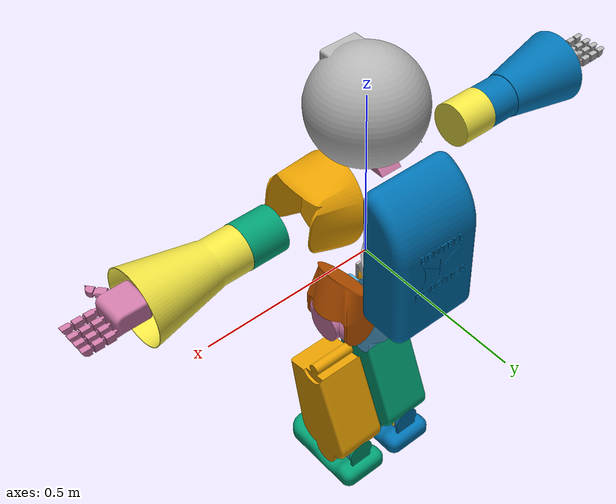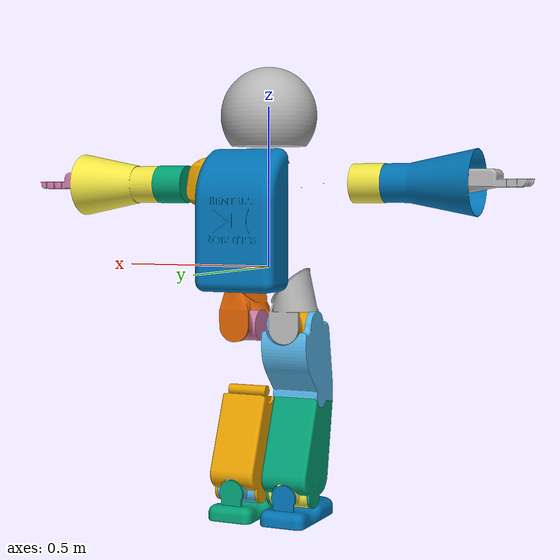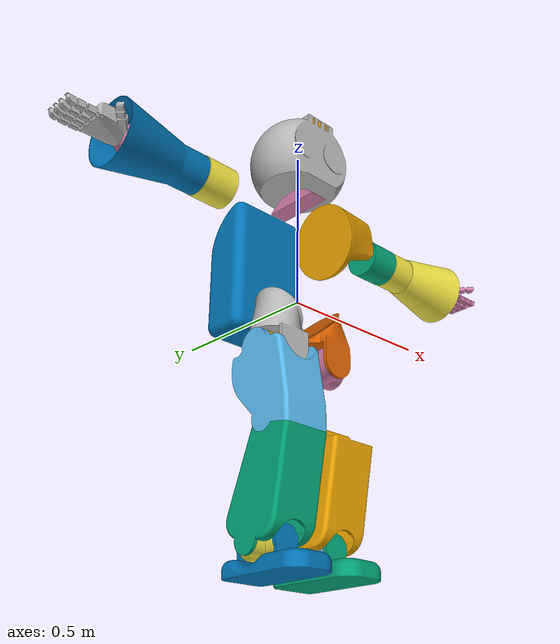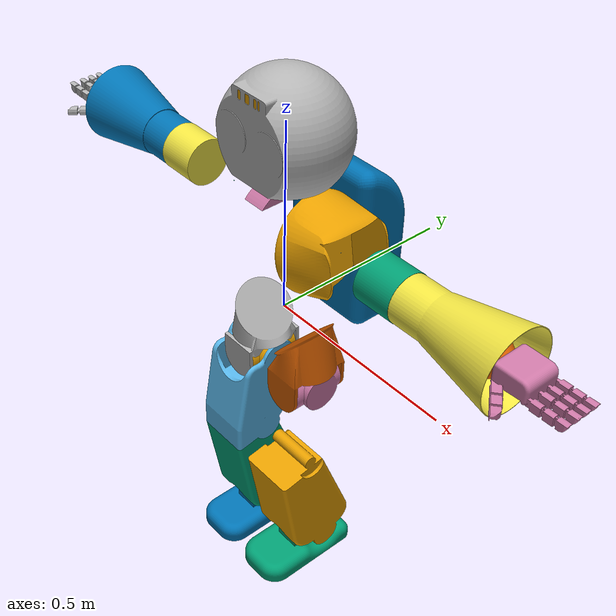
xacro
<?xml version="1.0"?>
<robot xmlns:xacro="http://www.ros.org/wiki/xacro" name="kora">
<!-- Built using Xacro Generator: https://github.com/Miimiikiu/kora_tools.git -->
<xacro:property name="Black" value="0.0 0.0 0.0 1.0"/>
<xacro:property name="torso_lower_visual_mesh" value="file:///home/sunset/sunset_ws/src/kora/src/kora_desc/visuals/OBJ/torso_lower.obj"/>
<xacro:property name="torso_lower_collision_mesh" value="file:///home/sunset/sunset_ws/src/kora/src/kora_desc/collisions/OBJ/torso_lower_collision.obj"/>
<xacro:property name="torso_mid_visual_mesh" value="file:///home/sunset/sunset_ws/src/kora/src/kora_desc/visuals/OBJ/torso_mid.obj"/>
<xacro:property name="torso_mid_collision_mesh" value="file:///home/sunset/sunset_ws/src/kora/src/kora_desc/collisions/OBJ/torso_mid_collision.obj"/>
<xacro:property name="torso_upper_visual_mesh" value="file:///home/sunset/sunset_ws/src/kora/src/kora_desc/visuals/OBJ/torso_upper.obj"/>
<xacro:property name="torso_upper_collision_mesh" value="file:///home/sunset/sunset_ws/src/kora/src/kora_desc/collisions/OBJ/torso_upper_collision.obj"/>
<xacro:property name="backpack_visual_mesh" value="file:///home/sunset/sunset_ws/src/kora/src/kora_desc/visuals/OBJ/backpack.obj"/>
<xacro:property name="backpack_collision_mesh" value="file:///home/sunset/sunset_ws/src/kora/src/kora_desc/collisions/OBJ/backpack_collision.obj"/>
<xacro:property name="neck_visual_mesh" value="file:///home/sunset/sunset_ws/src/kora/src/kora_desc/visuals/OBJ/neck.obj"/>
<xacro:property name="neck_collision_mesh" value="file:///home/sunset/sunset_ws/src/kora/src/kora_desc/collisions/OBJ/neck_collision.obj"/>
<xacro:property name="neck_connection_visual_mesh" value="file:///home/sunset/sunset_ws/src/kora/src/kora_desc/visuals/OBJ/neck_connection.obj"/>
<xacro:property name="neck_connection_collision_mesh" value="file:///home/sunset/sunset_ws/src/kora/src/kora_desc/collisions/OBJ/neck_connection_collision.obj"/>
<xacro:property name="head_visual_mesh" value="file:///home/sunset/sunset_ws/src/kora/src/kora_desc/visuals/OBJ/head.obj"/>
<xacro:property name="head_collision_mesh" value="file:///home/sunset/sunset_ws/src/kora/src/kora_desc/collisions/OBJ/head_collision.obj"/>
<xacro:property name="realsense_visual_mesh" value="file:///home/sunset/sunset_ws/src/kora/src/kora_desc/visuals/OBJ/realsense.obj"/>
<xacro:property name="realsense_collision_mesh" value="file:///home/sunset/sunset_ws/src/kora/src/kora_desc/collisions/OBJ/realsense_collision.obj"/>
<xacro:property name="shoulder_bracket_dexter_visual_mesh" value="file:///home/sunset/sunset_ws/src/kora/src/kora_desc/visuals/OBJ/shoulder_bracket_dexter.obj"/>
<xacro:property name="shoulder_bracket_dexter_collision_mesh" value="file:///home/sunset/sunset_ws/src/kora/src/kora_desc/collisions/OBJ/shoulder_bracket_dexter_collision.obj"/>
<xacro:property name="shoulder_link_dexter_visual_mesh" value="file:///home/sunset/sunset_ws/src/kora/src/kora_desc/visuals/OBJ/shoulder_link_dexter.obj"/>
<xacro:property name="shoulder_link_dexter_collision_mesh" value="file:///home/sunset/sunset_ws/src/kora/src/kora_desc/collisions/OBJ/shoulder_link_dexter_collision.obj"/>
<xacro:property name="arm_upper_dexter_visual_mesh" value="file:///home/sunset/sunset_ws/src/kora/src/kora_desc/visuals/OBJ/arm_upper_dexter.obj"/>
<xacro:property name="arm_upper_dexter_collision_mesh" value="file:///home/sunset/sunset_ws/src/kora/src/kora_desc/collisions/OBJ/arm_upper_dexter_collision.obj"/>
<xacro:property name="forearm_dexter_visual_mesh" value="file:///home/sunset/sunset_ws/src/kora/src/kora_desc/visuals/OBJ/forearm_dexter.obj"/>
<xacro:property name="forearm_dexter_collision_mesh" value="file:///home/sunset/sunset_ws/src/kora/src/kora_desc/collisions/OBJ/forearm_dexter_collision.obj"/>
<xacro:property name="wrist_rot_link_dexter_visual_mesh" value="file:///home/sunset/sunset_ws/src/kora/src/kora_desc/visuals/OBJ/wrist_rot_link_dexter.obj"/>
<xacro:property name="wrist_rot_link_dexter_collision_mesh" value="file:///home/sunset/sunset_ws/src/kora/src/kora_desc/collisions/OBJ/wrist_rot_link_dexter_collision.obj"/>
<xacro:property name="wrist_ball_dexter_visual_mesh" value="file:///home/sunset/sunset_ws/src/kora/src/kora_desc/visuals/OBJ/wrist_ball_dexter.obj"/>
<xacro:property name="wrist_ball_dexter_collision_mesh" value="file:///home/sunset/sunset_ws/src/kora/src/kora_desc/collisions/OBJ/wrist_ball_dexter_collision.obj"/>
<xacro:property name="hand_dexter_visual_mesh" value="file:///home/sunset/sunset_ws/src/kora/src/kora_desc/visuals/OBJ/hand_dexter.obj"/>
<xacro:property name="hand_dexter_collision_mesh" value="file:///home/sunset/sunset_ws/src/kora/src/kora_desc/collisions/OBJ/hand_dexter_collision.obj"/>
<xacro:property name="shoulder_bracket_sinister_visual_mesh" value="file:///home/sunset/sunset_ws/src/kora/src/kora_desc/visuals/OBJ/shoulder_bracket_sinister.obj"/>
<xacro:property name="shoulder_bracket_sinister_collision_mesh" value="file:///home/sunset/sunset_ws/src/kora/src/kora_desc/collisions/OBJ/shoulder_bracket_sinister_collision.obj"/>
<xacro:property name="shoulder_link_sinister_visual_mesh" value="file:///home/sunset/sunset_ws/src/kora/src/kora_desc/visuals/OBJ/shoulder_link_sinister.obj"/>
<xacro:property name="shoulder_link_sinister_collision_mesh" value="file:///home/sunset/sunset_ws/src/kora/src/kora_desc/collisions/OBJ/shoulder_link_sinister_collision.obj"/>
<xacro:property name="arm_upper_sinister_visual_mesh" value="file:///home/sunset/sunset_ws/src/kora/src/kora_desc/visuals/OBJ/arm_upper_sinister.obj"/>
<xacro:property name="arm_upper_sinister_collision_mesh" value="file:///home/sunset/sunset_ws/src/kora/src/kora_desc/collisions/OBJ/arm_upper_sinister_collision.obj"/>
<xacro:property name="forearm_sinister_visual_mesh" value="file:///home/sunset/sunset_ws/src/kora/src/kora_desc/visuals/OBJ/forearm_sinister.obj"/>
<xacro:property name="forearm_sinister_collision_mesh" value="file:///home/sunset/sunset_ws/src/kora/src/kora_desc/collisions/OBJ/forearm_sinister_collision.obj"/>
<xacro:property name="wrist_rot_link_sinister_visual_mesh" value="file:///home/sunset/sunset_ws/src/kora/src/kora_desc/visuals/OBJ/wrist_rot_link_sinister.obj"/>
<xacro:property name="wrist_rot_link_sinister_collision_mesh" value="file:///home/sunset/sunset_ws/src/kora/src/kora_desc/collisions/OBJ/wrist_rot_link_sinister_collision.obj"/>
<xacro:property name="wrist_ball_sinister_visual_mesh" value="file:///home/sunset/sunset_ws/src/kora/src/kora_desc/visuals/OBJ/wrist_ball_sinister.obj"/>
<xacro:property name="wrist_ball_sinister_collision_mesh" value="file:///home/sunset/sunset_ws/src/kora/src/kora_desc/collisions/OBJ/wrist_ball_sinister_collision.obj"/>
<xacro:property name="hand_sinister_visual_mesh" value="file:///home/sunset/sunset_ws/src/kora/src/kora_desc/visuals/OBJ/hand_sinister.obj"/>
<xacro:property name="hand_sinister_collision_mesh" value="file:///home/sunset/sunset_ws/src/kora/src/kora_desc/collisions/OBJ/hand_sinister_collision.obj"/>
<xacro:property name="hip_bracket_dexter_visual_mesh" value="file:///home/sunset/sunset_ws/src/kora/src/kora_desc/visuals/OBJ/hip_bracket_dexter.obj"/>
<xacro:property name="hip_bracket_dexter_collision_mesh" value="file:///home/sunset/sunset_ws/src/kora/src/kora_desc/collisions/OBJ/hip_bracket_dexter_collision.obj"/>
<xacro:property name="hip_motor_link_dexter_visual_mesh" value="file:///home/sunset/sunset_ws/src/kora/src/kora_desc/visuals/OBJ/hip_motor_link_dexter.obj"/>
<xacro:property name="hip_motor_link_dexter_collision_mesh" value="file:///home/sunset/sunset_ws/src/kora/src/kora_desc/collisions/OBJ/hip_motor_link_dexter_collision.obj"/>
<xacro:property name="thigh_dexter_visual_mesh" value="file:///home/sunset/sunset_ws/src/kora/src/kora_desc/visuals/OBJ/thigh_dexter.obj"/>
<xacro:property name="thigh_dexter_collision_mesh" value="file:///home/sunset/sunset_ws/src/kora/src/kora_desc/collisions/OBJ/thigh_dexter_collision.obj"/>
<xacro:property name="calf_dexter_visual_mesh" value="file:///home/sunset/sunset_ws/src/kora/src/kora_desc/visuals/OBJ/calf_dexter.obj"/>
<xacro:property name="calf_dexter_collision_mesh" value="file:///home/sunset/sunset_ws/src/kora/src/kora_desc/collisions/OBJ/calf_dexter_collision.obj"/>
<xacro:property name="ankle_link_dexter_visual_mesh" value="file:///home/sunset/sunset_ws/src/kora/src/kora_desc/visuals/OBJ/ankle_link_dexter.obj"/>
<xacro:property name="ankle_link_dexter_collision_mesh" value="file:///home/sunset/sunset_ws/src/kora/src/kora_desc/collisions/OBJ/ankle_link_dexter_collision.obj"/>
<xacro:property name="foot_dexter_visual_mesh" value="file:///home/sunset/sunset_ws/src/kora/src/kora_desc/visuals/OBJ/foot_dexter.obj"/>
<xacro:property name="foot_dexter_collision_mesh" value="file:///home/sunset/sunset_ws/src/kora/src/kora_desc/collisions/OBJ/foot_dexter_collision.obj"/>
<xacro:property name="hip_bracket_sinister_visual_mesh" value="file:///home/sunset/sunset_ws/src/kora/src/kora_desc/visuals/OBJ/hip_bracket_sinister.obj"/>
<xacro:property name="hip_bracket_sinister_collision_mesh" value="file:///home/sunset/sunset_ws/src/kora/src/kora_desc/collisions/OBJ/hip_bracket_sinister_collision.obj"/>
<xacro:property name="hip_motor_link_sinister_visual_mesh" value="file:///home/sunset/sunset_ws/src/kora/src/kora_desc/visuals/OBJ/hip_motor_link_sinister.obj"/>
<xacro:property name="hip_motor_link_sinister_collision_mesh" value="file:///home/sunset/sunset_ws/src/kora/src/kora_desc/collisions/OBJ/hip_motor_link_sinister_collision.obj"/>
<xacro:property name="thigh_sinister_visual_mesh" value="file:///home/sunset/sunset_ws/src/kora/src/kora_desc/visuals/OBJ/thigh_sinister.obj"/>
<xacro:property name="thigh_sinister_collision_mesh" value="file:///home/sunset/sunset_ws/src/kora/src/kora_desc/collisions/OBJ/thigh_sinister_collision.obj"/>
<xacro:property name="calf_sinister_visual_mesh" value="file:///home/sunset/sunset_ws/src/kora/src/kora_desc/visuals/OBJ/calf_sinister.obj"/>
<xacro:property name="calf_sinister_collision_mesh" value="file:///home/sunset/sunset_ws/src/kora/src/kora_desc/collisions/OBJ/calf_sinister_collision.obj"/>
<xacro:property name="ankle_link_sinister_visual_mesh" value="file:///home/sunset/sunset_ws/src/kora/src/kora_desc/visuals/OBJ/ankle_link_sinister.obj"/>
<xacro:property name="ankle_link_sinister_collision_mesh" value="file:///home/sunset/sunset_ws/src/kora/src/kora_desc/collisions/OBJ/ankle_link_sinister_collision.obj"/>
<xacro:property name="foot_sinister_visual_mesh" value="file:///home/sunset/sunset_ws/src/kora/src/kora_desc/visuals/OBJ/foot_sinister.obj"/>
<xacro:property name="foot_sinister_collision_mesh" value="file:///home/sunset/sunset_ws/src/kora/src/kora_desc/collisions/OBJ/foot_sinister_collision.obj"/>

<link name="world"/>
<joint name="world_joint" type="fixed">
  <parent link="world"/>
  <child link="torso_lower"/>
  <origin rpy="0 0 0" xyz="0 0 0"/>
</joint>

<link name="torso_lower">
      <visual>
        <origin xyz="0 0 0" rpy="0 0 0"/>
        <geometry>
          <mesh filename="${torso_lower_visual_mesh}" scale="1 1 1"/>
        </geometry>
          </visual>
      <collision>
        <origin xyz="0 0 0" rpy="0 0 0"/>
        <geometry>
          <mesh filename="${torso_lower_collision_mesh}" scale="0.01 0.01 0.01"/>
        </geometry>
      </collision>

      <inertial>
        <origin xyz="0 0 0" rpy="0 0 0"/>
        <mass value="1.0" />
        <inertia ixx="0.00433778921" ixy="-9.08698218e-06" ixz="6.015618019999999e-06" iyy="0.00327528256" iyz="0.0008259445780000001" izz="0.00448404768" />
      </inertial>
      <gazebo reference="torso_lower">
      </gazebo>
</link>
<link name="torso_mid">
      <visual>
        <origin xyz="0 0 0" rpy="0 0 0"/>
        <geometry>
          <mesh filename="${torso_mid_visual_mesh}" scale="1 1 1"/>
        </geometry>
          </visual>
      <collision>
        <origin xyz="0 0 0" rpy="0 0 0"/>
        <geometry>
          <mesh filename="${torso_mid_collision_mesh}" scale="0.01 0.01 0.01"/>
        </geometry>
      </collision>

      <inertial>
        <origin xyz="0 0 0" rpy="0 0 0"/>
        <mass value="1.0" />
        <inertia ixx="0.00349680885" ixy="-7.22360891e-21" ixz="-1.64695615e-19" iyy="0.00401549693" iyz="5.5563248699999994e-06" izz="0.00647631994" />
      </inertial>
      <gazebo reference="torso_mid">
      </gazebo>
</link>
<link name="torso_upper">
      <visual>
        <origin xyz="0 0 0" rpy="0 0 0"/>
        <geometry>
          <mesh filename="${torso_upper_visual_mesh}" scale="1 1 1"/>
        </geometry>
          </visual>
      <collision>
        <origin xyz="0 0 0" rpy="0 0 0"/>
        <geometry>
          <mesh filename="${torso_upper_collision_mesh}" scale="0.01 0.01 0.01"/>
        </geometry>
      </collision>

      <inertial>
        <origin xyz="0 0 0" rpy="0 0 0"/>
        <mass value="1.0" />
        <inertia ixx="0.011925590199999999" ixy="-1.34254727e-06" ixz="3.94209561e-06" iyy="0.0120148783" iyz="2.94102999e-06" izz="0.0116527628" />
      </inertial>
      <gazebo reference="torso_upper">
      </gazebo>
</link>
<link name="backpack">
      <visual>
        <origin xyz="0 0 0" rpy="0 0 0"/>
        <geometry>
          <mesh filename="${backpack_visual_mesh}" scale="1 1 1"/>
        </geometry>
          </visual>
      <collision>
        <origin xyz="0 0 0" rpy="0 0 0"/>
        <geometry>
          <mesh filename="${backpack_collision_mesh}" scale="0.01 0.01 0.01"/>
        </geometry>
      </collision>

      <inertial>
        <origin xyz="0 0 0" rpy="0 0 0"/>
        <mass value="1.0" />
        <inertia ixx="0.0222803238" ixy="-1.3425329400000001e-06" ixz="-8.81825398e-07" iyy="0.027701203000000004" iyz="0.0009489099969999999" izz="0.0105777581" />
      </inertial>
      <gazebo reference="backpack">
      </gazebo>
</link>
<link name="neck">
      <visual>
        <origin xyz="0 0 0.10357" rpy="0 0 0"/>
        <geometry>
          <mesh filename="${neck_visual_mesh}" scale="1 1 1"/>
        </geometry>
          </visual>
      <collision>
        <origin xyz="0 0 0.10357" rpy="0 0 0"/>
        <geometry>
          <mesh filename="${neck_collision_mesh}" scale="0.01 0.01 0.01"/>
        </geometry>
      </collision>

      <inertial>
        <origin xyz="0 0 0.10357" rpy="0 0 0"/>
        <mass value="1.0" />
        <inertia ixx="6.1003576999999995e-06" ixy="-4.877739510000001e-13" ixz="7.82291408e-14" iyy="6.10035843e-06" iyz="3.85604688e-14" izz="1.0733481400000001e-05" />
      </inertial>
      <gazebo reference="neck">
      </gazebo>
</link>
<link name="neck_connection">
      <visual>
        <origin xyz="0 0 0" rpy="0 0 0"/>
        <geometry>
          <mesh filename="${neck_connection_visual_mesh}" scale="1 1 1"/>
        </geometry>
          </visual>
      <collision>
        <origin xyz="0 0 0" rpy="0 0 0"/>
        <geometry>
          <mesh filename="${neck_connection_collision_mesh}" scale="0.01 0.01 0.01"/>
        </geometry>
      </collision>

      <inertial>
        <origin xyz="0 0 0" rpy="0 0 0"/>
        <mass value="1.0" />
        <inertia ixx="5.5356104900000006e-05" ixy="1.80622642e-22" ixz="-1.22648384e-21" iyy="1.26475226e-05" iyz="-2.4919761099999997e-22" izz="6.1013188900000006e-05" />
      </inertial>
      <gazebo reference="neck_connection">
      </gazebo>
</link>
<link name="head">
      <visual>
        <origin xyz="0 0 0" rpy="0 0 0"/>
        <geometry>
          <mesh filename="${head_visual_mesh}" scale="1 1 1"/>
        </geometry>
          </visual>
      <collision>
        <origin xyz="0 0 0" rpy="0 0 0"/>
        <geometry>
          <mesh filename="${head_collision_mesh}" scale="0.01 0.01 0.01"/>
        </geometry>
      </collision>

      <inertial>
        <origin xyz="0 0 0" rpy="0 0 0"/>
        <mass value="1.0" />
        <inertia ixx="0.00875499152" ixy="-1.10031686e-07" ixz="1.05895885e-07" iyy="0.0100606856" iyz="0.000146878504" izz="0.0102866286" />
      </inertial>
      <gazebo reference="head">
      </gazebo>
</link>
<link name="realsense">
      <visual>
        <origin xyz="0 0 0" rpy="0 0 0"/>
        <geometry>
          <mesh filename="${realsense_visual_mesh}" scale="1 1 1"/>
        </geometry>
          </visual>
      <collision>
        <origin xyz="0 0 0" rpy="0 0 0"/>
        <geometry>
          <mesh filename="${realsense_collision_mesh}" scale="0.01 0.01 0.01"/>
        </geometry>
      </collision>

      <inertial>
        <origin xyz="0 0 0" rpy="0 0 0"/>
        <mass value="1.0" />
        <inertia ixx="2.57383108e-07" ixy="2.38709849e-21" ixz="-2.03483329e-21" iyy="2.70705869e-06" iyz="-2.3293406e-19" izz="2.67601348e-06" />
      </inertial>
      <gazebo reference="realsense">
      </gazebo>
</link>
<link name="shoulder_bracket_dexter">
      <visual>
        <origin xyz="0 0 0" rpy="0 0 0"/>
        <geometry>
          <mesh filename="${shoulder_bracket_dexter_visual_mesh}" scale="1 1 1"/>
        </geometry>
          </visual>
      <collision>
        <origin xyz="0 0 0" rpy="0 0 0"/>
        <geometry>
          <mesh filename="${shoulder_bracket_dexter_collision_mesh}" scale="0.01 0.01 0.01"/>
        </geometry>
      </collision>

      <inertial>
        <origin xyz="0 0 0" rpy="0 0 0"/>
        <mass value="1.0" />
        <inertia ixx="0.00144157404" ixy="-4.4869663199999996e-08" ixz="6.311151650000001e-05" iyy="0.0007949240900000001" iyz="-3.69869358e-08" izz="0.00103050401" />
      </inertial>
      <gazebo reference="shoulder_bracket_dexter">
      </gazebo>
</link>
<link name="shoulder_link_dexter">
      <visual>
        <origin xyz="0 0 0" rpy="0 0 0"/>
        <geometry>
          <mesh filename="${shoulder_link_dexter_visual_mesh}" scale="1 1 1"/>
        </geometry>
          </visual>
      <collision>
        <origin xyz="0 0 0" rpy="0 0 0"/>
        <geometry>
          <mesh filename="${shoulder_link_dexter_collision_mesh}" scale="0.01 0.01 0.01"/>
        </geometry>
      </collision>

      <inertial>
        <origin xyz="0 0 0" rpy="0 0 0"/>
        <mass value="1.0" />
        <inertia ixx="0.00089769986" ixy="-5.50831472e-09" ixz="5.28057508e-06" iyy="0.000936444764" iyz="-1.70906237e-08" izz="0.00113433115" />
      </inertial>
      <gazebo reference="shoulder_link_dexter">
      </gazebo>
</link>
<link name="arm_upper_dexter">
      <visual>
        <origin xyz="0 0 0" rpy="0 0 0"/>
        <geometry>
          <mesh filename="${arm_upper_dexter_visual_mesh}" scale="1 1 1"/>
        </geometry>
          </visual>
      <collision>
        <origin xyz="0 0 0" rpy="0 0 0"/>
        <geometry>
          <mesh filename="${arm_upper_dexter_collision_mesh}" scale="0.01 0.01 0.01"/>
        </geometry>
      </collision>

      <inertial>
        <origin xyz="0 0 0" rpy="0 0 0"/>
        <mass value="1.0" />
        <inertia ixx="0.000233307947" ixy="-8.29006429e-21" ixz="8.64003529e-20" iyy="0.00027190574799999996" iyz="2.06795153e-21" izz="0.000250122095" />
      </inertial>
      <gazebo reference="arm_upper_dexter">
      </gazebo>
</link>
<link name="forearm_dexter">
      <visual>
        <origin xyz="0 0 0" rpy="0 0 0"/>
        <geometry>
          <mesh filename="${forearm_dexter_visual_mesh}" scale="1 1 1"/>
        </geometry>
          </visual>
      <collision>
        <origin xyz="0 0 0" rpy="0 0 0"/>
        <geometry>
          <mesh filename="${forearm_dexter_collision_mesh}" scale="0.01 0.01 0.01"/>
        </geometry>
      </collision>

      <inertial>
        <origin xyz="0 0 0" rpy="0 0 0"/>
        <mass value="1.0" />
        <inertia ixx="0.000530099429" ixy="9.17050572e-06" ixz="-7.13339277e-09" iyy="0.0009883305099999999" iyz="2.2009097e-09" izz="0.0009665236070000001" />
      </inertial>
      <gazebo reference="forearm_dexter">
      </gazebo>
</link>
<link name="wrist_rot_link_dexter">
      <visual>
        <origin xyz="0 0 0" rpy="0 0 0"/>
        <geometry>
          <mesh filename="${wrist_rot_link_dexter_visual_mesh}" scale="1 1 1"/>
        </geometry>
          </visual>
      <collision>
        <origin xyz="0 0 0" rpy="0 0 0"/>
        <geometry>
          <mesh filename="${wrist_rot_link_dexter_collision_mesh}" scale="0.01 0.01 0.01"/>
        </geometry>
      </collision>

      <inertial>
        <origin xyz="0 0 0" rpy="0 0 0"/>
        <mass value="1.0" />
        <inertia ixx="0.000111629122" ixy="-8.30961813e-21" ixz="4.9961709e-22" iyy="7.147135539999999e-05" iyz="4.91138489e-22" izz="7.14714437e-05" />
      </inertial>
      <gazebo reference="wrist_rot_link_dexter">
      </gazebo>
</link>
<link name="wrist_ball_dexter">
      <visual>
        <origin xyz="0 0 0" rpy="0 0 0"/>
        <geometry>
          <mesh filename="${wrist_ball_dexter_visual_mesh}" scale="1 1 1"/>
        </geometry>
          </visual>
      <collision>
        <origin xyz="0 0 0" rpy="0 0 0"/>
        <geometry>
          <mesh filename="${wrist_ball_dexter_collision_mesh}" scale="0.01 0.01 0.01"/>
        </geometry>
      </collision>

      <inertial>
        <origin xyz="0 0 0" rpy="0 0 0"/>
        <mass value="1.0" />
        <inertia ixx="3.9329131600000004e-05" ixy="1.44590198e-21" ixz="6.45308082e-12" iyy="2.5775806600000004e-05" iyz="-4.01938635e-22" izz="2.5775695700000002e-05" />
      </inertial>
      <gazebo reference="wrist_ball_dexter">
      </gazebo>
</link>
<link name="hand_dexter">
      <visual>
        <origin xyz="0 0 0" rpy="0 0 0"/>
        <geometry>
          <mesh filename="${hand_dexter_visual_mesh}" scale="1 1 1"/>
        </geometry>
          </visual>
      <collision>
        <origin xyz="0 0 0" rpy="0 0 0"/>
        <geometry>
          <mesh filename="${hand_dexter_collision_mesh}" scale="0.01 0.01 0.01"/>
        </geometry>
      </collision>

      <inertial>
        <origin xyz="0 0 0" rpy="0 0 0"/>
        <mass value="1.0" />
        <inertia ixx="7.47972951e-05" ixy="4.95234034e-06" ixz="-8.68417156e-06" iyy="0.000135524538" iyz="-2.0051651e-06" izz="0.00018104788299999998" />
      </inertial>
      <gazebo reference="hand_dexter">
      </gazebo>
</link>
<link name="shoulder_bracket_sinister">
      <visual>
        <origin xyz="0 0 0" rpy="0 0 0"/>
        <geometry>
          <mesh filename="${shoulder_bracket_sinister_visual_mesh}" scale="1 1 1"/>
        </geometry>
          </visual>
      <collision>
        <origin xyz="0 0 0" rpy="0 0 0"/>
        <geometry>
          <mesh filename="${shoulder_bracket_sinister_collision_mesh}" scale="0.01 0.01 0.01"/>
        </geometry>
      </collision>

      <inertial>
        <origin xyz="0 0 0" rpy="0 0 0"/>
        <mass value="1.0" />
        <inertia ixx="0.00144157404" ixy="-4.4869663199999996e-08" ixz="-6.311151650000001e-05" iyy="0.0007949240900000001" iyz="3.69869358e-08" izz="0.00103050401" />
      </inertial>
      <gazebo reference="shoulder_bracket_sinister">
      </gazebo>
</link>
<link name="shoulder_link_sinister">
      <visual>
        <origin xyz="0 0 0" rpy="0 0 0"/>
        <geometry>
          <mesh filename="${shoulder_link_sinister_visual_mesh}" scale="1 1 1"/>
        </geometry>
          </visual>
      <collision>
        <origin xyz="0 0 0" rpy="0 0 0"/>
        <geometry>
          <mesh filename="${shoulder_link_sinister_collision_mesh}" scale="0.01 0.01 0.01"/>
        </geometry>
      </collision>

      <inertial>
        <origin xyz="0 0 0" rpy="0 0 0"/>
        <mass value="1.0" />
        <inertia ixx="0.00089769986" ixy="-5.50831472e-09" ixz="-5.28057508e-06" iyy="0.000936444764" iyz="1.70906237e-08" izz="0.00113433115" />
      </inertial>
      <gazebo reference="shoulder_link_sinister">
      </gazebo>
</link>
<link name="arm_upper_sinister">
      <visual>
        <origin xyz="0 0 0" rpy="0 0 0"/>
        <geometry>
          <mesh filename="${arm_upper_sinister_visual_mesh}" scale="1 1 1"/>
        </geometry>
          </visual>
      <collision>
        <origin xyz="0 0 0" rpy="0 0 0"/>
        <geometry>
          <mesh filename="${arm_upper_sinister_collision_mesh}" scale="0.01 0.01 0.01"/>
        </geometry>
      </collision>

      <inertial>
        <origin xyz="0 0 0" rpy="0 0 0"/>
        <mass value="1.0" />
        <inertia ixx="0.000233307947" ixy="9.61355327e-21" ixz="6.691495609999999e-21" iyy="0.00027190574799999996" iyz="-2.23338765e-21" izz="0.000250122095" />
      </inertial>
      <gazebo reference="arm_upper_sinister">
      </gazebo>
</link>
<link name="forearm_sinister">
      <visual>
        <origin xyz="0 0 0" rpy="0 0 0"/>
        <geometry>
          <mesh filename="${forearm_sinister_visual_mesh}" scale="1 1 1"/>
        </geometry>
          </visual>
      <collision>
        <origin xyz="0 0 0" rpy="0 0 0"/>
        <geometry>
          <mesh filename="${forearm_sinister_collision_mesh}" scale="0.01 0.01 0.01"/>
        </geometry>
      </collision>

      <inertial>
        <origin xyz="0 0 0" rpy="0 0 0"/>
        <mass value="1.0" />
        <inertia ixx="0.000530099429" ixy="9.17050572e-06" ixz="7.13339277e-09" iyy="0.0009883305099999999" iyz="-2.2009097e-09" izz="0.0009665236070000001" />
      </inertial>
      <gazebo reference="forearm_sinister">
      </gazebo>
</link>
<link name="wrist_rot_link_sinister">
      <visual>
        <origin xyz="0 0 0" rpy="0 0 0"/>
        <geometry>
          <mesh filename="${wrist_rot_link_sinister_visual_mesh}" scale="1 1 1"/>
        </geometry>
          </visual>
      <collision>
        <origin xyz="0 0 0" rpy="0 0 0"/>
        <geometry>
          <mesh filename="${wrist_rot_link_sinister_collision_mesh}" scale="0.01 0.01 0.01"/>
        </geometry>
      </collision>

      <inertial>
        <origin xyz="0 0 0" rpy="0 0 0"/>
        <mass value="1.0" />
        <inertia ixx="0.000111629122" ixy="-8.30961813e-21" ixz="-4.9961709e-22" iyy="7.147135539999999e-05" iyz="-4.91138489e-22" izz="7.14714437e-05" />
      </inertial>
      <gazebo reference="wrist_rot_link_sinister">
      </gazebo>
</link>
<link name="wrist_ball_sinister">
      <visual>
        <origin xyz="0 0 0" rpy="0 0 0"/>
        <geometry>
          <mesh filename="${wrist_ball_sinister_visual_mesh}" scale="1 1 1"/>
        </geometry>
          </visual>
      <collision>
        <origin xyz="0 0 0" rpy="0 0 0"/>
        <geometry>
          <mesh filename="${wrist_ball_sinister_collision_mesh}" scale="0.01 0.01 0.01"/>
        </geometry>
      </collision>

      <inertial>
        <origin xyz="0 0 0" rpy="0 0 0"/>
        <mass value="1.0" />
        <inertia ixx="3.9329131600000004e-05" ixy="1.44590198e-21" ixz="-6.45308082e-12" iyy="2.5775806600000004e-05" iyz="4.01938635e-22" izz="2.5775695700000002e-05" />
      </inertial>
      <gazebo reference="wrist_ball_sinister">
      </gazebo>
</link>
<link name="hand_sinister">
      <visual>
        <origin xyz="0 0 0" rpy="0 0 0"/>
        <geometry>
          <mesh filename="${hand_sinister_visual_mesh}" scale="1 1 1"/>
        </geometry>
          </visual>
      <collision>
        <origin xyz="0 0 0" rpy="0 0 0"/>
        <geometry>
          <mesh filename="${hand_sinister_collision_mesh}" scale="0.01 0.01 0.01"/>
        </geometry>
      </collision>

      <inertial>
        <origin xyz="0 0 0" rpy="0 0 0"/>
        <mass value="1.0" />
        <inertia ixx="7.479572059999999e-05" ixy="-4.95856551e-06" ixz="8.68406372e-06" iyy="0.000135524802" iyz="-2.00905246e-06" izz="0.00018104611" />
      </inertial>
      <gazebo reference="hand_sinister">
      </gazebo>
</link>
<link name="hip_bracket_dexter">
      <visual>
        <origin xyz="0 0 0" rpy="0 0 0"/>
        <geometry>
          <mesh filename="${hip_bracket_dexter_visual_mesh}" scale="1 1 1"/>
        </geometry>
          </visual>
      <collision>
        <origin xyz="0 0 0" rpy="0 0 0"/>
        <geometry>
          <mesh filename="${hip_bracket_dexter_collision_mesh}" scale="0.01 0.01 0.01"/>
        </geometry>
      </collision>

      <inertial>
        <origin xyz="0 0 0" rpy="0 0 0"/>
        <mass value="1.0" />
        <inertia ixx="0.00057980089" ixy="3.03514081e-09" ixz="-6.04022308e-05" iyy="0.00042406632000000004" iyz="-1.91982782e-08" izz="0.00044408035399999996" />
      </inertial>
      <gazebo reference="hip_bracket_dexter">
      </gazebo>
</link>
<link name="hip_motor_link_dexter">
      <visual>
        <origin xyz="0 0 0" rpy="0 0 0"/>
        <geometry>
          <mesh filename="${hip_motor_link_dexter_visual_mesh}" scale="1 1 1"/>
        </geometry>
          </visual>
      <collision>
        <origin xyz="0 0 0" rpy="0 0 0"/>
        <geometry>
          <mesh filename="${hip_motor_link_dexter_collision_mesh}" scale="0.01 0.01 0.01"/>
        </geometry>
      </collision>

      <inertial>
        <origin xyz="0 0 0" rpy="0 0 0"/>
        <mass value="1.0" />
        <inertia ixx="0.000287783964" ixy="-4.0395808699999995e-16" ixz="3.2604867599999996e-10" iyy="0.00023118299" iyz="4.52423297e-10" izz="0.00033092146" />
      </inertial>
      <gazebo reference="hip_motor_link_dexter">
      </gazebo>
</link>
<link name="thigh_dexter">
      <visual>
        <origin xyz="0 0 0" rpy="0 0 0"/>
        <geometry>
          <mesh filename="${thigh_dexter_visual_mesh}" scale="1 1 1"/>
        </geometry>
          </visual>
      <collision>
        <origin xyz="0 0 0" rpy="0 0 0"/>
        <geometry>
          <mesh filename="${thigh_dexter_collision_mesh}" scale="0.01 0.01 0.01"/>
        </geometry>
      </collision>

      <inertial>
        <origin xyz="0 0 0" rpy="0 0 0"/>
        <mass value="1.0" />
        <inertia ixx="0.00318832262" ixy="3.21252453e-05" ixz="0.00012394708" iyy="0.00276480145" iyz="-0.000569440192" izz="0.00248045855" />
      </inertial>
      <gazebo reference="thigh_dexter">
      </gazebo>
</link>
<link name="calf_dexter">
      <visual>
        <origin xyz="0 0 0" rpy="0 0 0"/>
        <geometry>
          <mesh filename="${calf_dexter_visual_mesh}" scale="1 1 1"/>
        </geometry>
          </visual>
      <collision>
        <origin xyz="0 0 0" rpy="0 0 0"/>
        <geometry>
          <mesh filename="${calf_dexter_collision_mesh}" scale="0.01 0.01 0.01"/>
        </geometry>
      </collision>

      <inertial>
        <origin xyz="0 0 0" rpy="0 0 0"/>
        <mass value="1.0" />
        <inertia ixx="0.00558420881" ixy="-7.885774e-10" ixz="-5.42609033e-10" iyy="0.00513737038" iyz="0.000873086495" izz="0.0030546704499999997" />
      </inertial>
      <gazebo reference="calf_dexter">
      </gazebo>
</link>
<link name="ankle_link_dexter">
      <visual>
        <origin xyz="0 0 0" rpy="0 0 0"/>
        <geometry>
          <mesh filename="${ankle_link_dexter_visual_mesh}" scale="1 1 1"/>
        </geometry>
          </visual>
      <collision>
        <origin xyz="0 0 0" rpy="0 0 0"/>
        <geometry>
          <mesh filename="${ankle_link_dexter_collision_mesh}" scale="0.01 0.01 0.01"/>
        </geometry>
      </collision>

      <inertial>
        <origin xyz="0 0 0" rpy="0 0 0"/>
        <mass value="1.0" />
        <inertia ixx="0.000169882972" ixy="2.8188764300000002e-21" ixz="1.40620704e-21" iyy="0.000169882529" iyz="-3.87740912e-23" izz="0.00023568287299999998" />
      </inertial>
      <gazebo reference="ankle_link_dexter">
      </gazebo>
</link>
<link name="foot_dexter">
      <visual>
        <origin xyz="0 0 0" rpy="0 0 0"/>
        <geometry>
          <mesh filename="${foot_dexter_visual_mesh}" scale="1 1 1"/>
        </geometry>
          </visual>
      <collision>
        <origin xyz="0 0 0" rpy="0 0 0"/>
        <geometry>
          <mesh filename="${foot_dexter_collision_mesh}" scale="0.01 0.01 0.01"/>
        </geometry>
      </collision>

      <inertial>
        <origin xyz="0 0 0" rpy="0 0 0"/>
        <mass value="1.0" />
        <inertia ixx="0.00142180074" ixy="-3.57379545e-10" ixz="1.49897664e-10" iyy="0.000386123636" iyz="-1.8796694499999997e-05" izz="0.0016409150100000001" />
      </inertial>
      <gazebo reference="foot_dexter">
      </gazebo>
</link>
<link name="hip_bracket_sinister">
      <visual>
        <origin xyz="0 0 0" rpy="0 0 0"/>
        <geometry>
          <mesh filename="${hip_bracket_sinister_visual_mesh}" scale="1 1 1"/>
        </geometry>
          </visual>
      <collision>
        <origin xyz="0 0 0" rpy="0 0 0"/>
        <geometry>
          <mesh filename="${hip_bracket_sinister_collision_mesh}" scale="0.01 0.01 0.01"/>
        </geometry>
      </collision>

      <inertial>
        <origin xyz="0 0 0" rpy="0 0 0"/>
        <mass value="1.0" />
        <inertia ixx="0.0005886984849999999" ixy="2.15943749e-08" ixz="5.61868891e-05" iyy="0.000403026999" iyz="5.0592535799999996e-08" izz="0.000492431593" />
      </inertial>
      <gazebo reference="hip_bracket_sinister">
      </gazebo>
</link>
<link name="hip_motor_link_sinister">
      <visual>
        <origin xyz="0 0 0" rpy="0 0 0"/>
        <geometry>
          <mesh filename="${hip_motor_link_sinister_visual_mesh}" scale="1 1 1"/>
        </geometry>
          </visual>
      <collision>
        <origin xyz="0 0 0" rpy="0 0 0"/>
        <geometry>
          <mesh filename="${hip_motor_link_sinister_collision_mesh}" scale="0.01 0.01 0.01"/>
        </geometry>
      </collision>

      <inertial>
        <origin xyz="0 0 0" rpy="0 0 0"/>
        <mass value="1.0" />
        <inertia ixx="0.000287783964" ixy="-4.03966028e-16" ixz="3.2604867599999996e-10" iyy="0.00023118299" iyz="4.52423297e-10" izz="0.00033092146" />
      </inertial>
      <gazebo reference="hip_motor_link_sinister">
      </gazebo>
</link>
<link name="thigh_sinister">
      <visual>
        <origin xyz="0 0 0" rpy="0 0 0"/>
        <geometry>
          <mesh filename="${thigh_sinister_visual_mesh}" scale="1 1 1"/>
        </geometry>
          </visual>
      <collision>
        <origin xyz="0 0 0" rpy="0 0 0"/>
        <geometry>
          <mesh filename="${thigh_sinister_collision_mesh}" scale="0.01 0.01 0.01"/>
        </geometry>
      </collision>

      <inertial>
        <origin xyz="0 0 0" rpy="0 0 0"/>
        <mass value="1.0" />
        <inertia ixx="0.0031883234" ixy="-3.2095586e-05" ixz="-0.000123922686" iyy="0.00276480046" iyz="-0.0005694405999999999" izz="0.00248045802" />
      </inertial>
      <gazebo reference="thigh_sinister">
      </gazebo>
</link>
<link name="calf_sinister">
      <visual>
        <origin xyz="0 0 0" rpy="0 0 0"/>
        <geometry>
          <mesh filename="${calf_sinister_visual_mesh}" scale="1 1 1"/>
        </geometry>
          </visual>
      <collision>
        <origin xyz="0 0 0" rpy="0 0 0"/>
        <geometry>
          <mesh filename="${calf_sinister_collision_mesh}" scale="0.01 0.01 0.01"/>
        </geometry>
      </collision>

      <inertial>
        <origin xyz="0 0 0" rpy="0 0 0"/>
        <mass value="1.0" />
        <inertia ixx="0.005737414979999999" ixy="-2.23875926e-09" ixz="-2.03377793e-09" iyy="0.0052584826" iyz="0.000905644896" izz="0.0031002929600000002" />
      </inertial>
      <gazebo reference="calf_sinister">
      </gazebo>
</link>
<link name="ankle_link_sinister">
      <visual>
        <origin xyz="0 0 0" rpy="0 0 0"/>
        <geometry>
          <mesh filename="${ankle_link_sinister_visual_mesh}" scale="1 1 1"/>
        </geometry>
          </visual>
      <collision>
        <origin xyz="0 0 0" rpy="0 0 0"/>
        <geometry>
          <mesh filename="${ankle_link_sinister_collision_mesh}" scale="0.01 0.01 0.01"/>
        </geometry>
      </collision>

      <inertial>
        <origin xyz="0 0 0" rpy="0 0 0"/>
        <mass value="1.0" />
        <inertia ixx="0.000169882972" ixy="-4.25739522e-21" ixz="1.0753348000000001e-21" iyy="0.000169882529" iyz="7.46401256e-23" izz="0.00023568287299999998" />
      </inertial>
      <gazebo reference="ankle_link_sinister">
      </gazebo>
</link>
<link name="foot_sinister">
      <visual>
        <origin xyz="0 0 0" rpy="0 0 0"/>
        <geometry>
          <mesh filename="${foot_sinister_visual_mesh}" scale="1 1 1"/>
        </geometry>
          </visual>
      <collision>
        <origin xyz="0 0 0" rpy="0 0 0"/>
        <geometry>
          <mesh filename="${foot_sinister_collision_mesh}" scale="0.01 0.01 0.01"/>
        </geometry>
      </collision>

      <inertial>
        <origin xyz="0 0 0" rpy="0 0 0"/>
        <mass value="1.0" />
        <inertia ixx="0.00142180074" ixy="4.87199272e-10" ixz="-1.4993659399999999e-10" iyy="0.000386123636" iyz="-1.8796694499999997e-05" izz="0.0016409150100000001" />
      </inertial>
      <gazebo reference="foot_sinister">
      </gazebo>
</link>

<joint name="spine_x" type="revolute">
      <parent link="torso_lower"/>
      <child link = "torso_mid"/>
      <origin xyz="0 0 0" rpy="0 0 0"/>
      <axis xyz="1 0 0"/>
      <limit lower="0" upper="0.22" effort="3.92" velocity="1.75"/>
      </joint>

<joint name="spine_z" type="revolute">
      <parent link="torso_mid"/>
      <child link = "torso_upper"/>
      <origin xyz="0 0 0.1" rpy="0 0 0"/>
      <axis xyz="0 0 1"/>
      <limit lower="-0.22" upper="0.22" effort="3.92" velocity="1.75"/>
      </joint>

<joint name="backpack_joint" type="fixed">
      <parent link="torso_upper"/>
      <child link = "backpack"/>
      <origin xyz="0 0.12 0.1" rpy="0 0 0"/>
      </joint>

<joint name="neck_connection_joint" type="fixed">
      <parent link="torso_upper"/>
      <child link = "neck_connection"/>
      <origin xyz="0 0 0.22609" rpy="0 0 0"/>
      </joint>

<joint name="neck_x" type="revolute">
      <parent link="torso_upper"/>
      <child link = "neck"/>
      <origin xyz="0 0 0.14829" rpy="0 0 0"/>
      <axis xyz="1 0 0"/>
      <limit lower="0" upper="0.22" effort="3.92" velocity="1.75"/>
      </joint>

<joint name="neck_z" type="revolute">
      <parent link="neck"/>
      <child link = "head"/>
      <origin xyz="0 0 0.12975" rpy="0 0 0"/>
      <axis xyz="1 0 0"/>
      <limit lower="0" upper="0.22" effort="3.92" velocity="1.75"/>
      </joint>

<joint name="realsense_joint" type="fixed">
      <parent link="head"/>
      <child link = "realsense"/>
      <origin xyz="0 0 0" rpy="0 0 0"/>
      </joint>

<joint name="shoulder_roll_dexter" type="revolute">
      <parent link="torso_upper"/>
      <child link = "shoulder_bracket_dexter"/>
      <origin xyz="-0.10976 0 0.14829" rpy="0 0.165143 0"/>
      <axis xyz="1 0 0"/>
      <limit lower="0" upper="0.22" effort="3.92" velocity="1.75"/>
      </joint>

<joint name="shoulder_roll_sinister" type="revolute">
      <parent link="torso_upper"/>
      <child link = "shoulder_bracket_sinister"/>
      <origin xyz="0.10976 0 0.14829" rpy="0 -0.165143 0"/>
      <axis xyz="1 0 0"/>
      <limit lower="0" upper="0.22" effort="3.92" velocity="1.75"/>
      </joint>

<joint name="shoulder_pitch_dexter" type="revolute">
      <parent link="shoulder_bracket_dexter"/>
      <child link = "shoulder_link_dexter"/>
      <origin xyz="-0.076 0 0" rpy="0 -0.165143 0"/>
      <axis xyz="1 0 0"/>
      <limit lower="0" upper="0.22" effort="3.92" velocity="1.75"/>
      </joint>

<joint name="shoulder_pitch_sinister" type="revolute">
      <parent link="shoulder_bracket_sinister"/>
      <child link = "shoulder_link_sinister"/>
      <origin xyz="0.076 0 0" rpy="0 0.165143 0"/>
      <axis xyz="1 0 0"/>
      <limit lower="0" upper="0.22" effort="3.92" velocity="1.75"/>
      </joint>

<joint name="arm_upper_rot_dexter" type="revolute">
      <parent link="shoulder_link_dexter"/>
      <child link = "arm_upper_dexter"/>
      <origin xyz="-0.102 0 0" rpy="0 0 0"/>
      <axis xyz="1 0 0"/>
      <limit lower="0" upper="0.22" effort="3.92" velocity="1.75"/>
      </joint>

<joint name="arm_upper_rot_sinister" type="revolute">
      <parent link="shoulder_link_sinister"/>
      <child link = "arm_upper_sinister"/>
      <origin xyz="0.102 0 0" rpy="0 0 0"/>
      <axis xyz="1 0 0"/>
      <limit lower="0" upper="0.22" effort="3.92" velocity="1.75"/>
      </joint>

<joint name="elbow_dexter" type="revolute">
      <parent link="arm_upper_dexter"/>
      <child link = "forearm_dexter"/>
      <origin xyz="-0.155 0 0" rpy="0 0 0"/>
      <axis xyz="1 0 0"/>
      <limit lower="0" upper="0.22" effort="3.92" velocity="1.75"/>
      </joint>

<joint name="elbow_sinister" type="revolute">
      <parent link="arm_upper_sinister"/>
      <child link = "forearm_sinister"/>
      <origin xyz="0.155 0 0" rpy="0 0 0"/>
      <axis xyz="1 0 0"/>
      <limit lower="0" upper="0.22" effort="3.92" velocity="1.75"/>
      </joint>

<joint name="wrist_rot_dexter" type="revolute">
      <parent link="forearm_dexter"/>
      <child link = "wrist_rot_link_dexter"/>
      <origin xyz="-0.1 0 0" rpy="0 0 0"/>
      <axis xyz="1 0 0"/>
      <limit lower="0" upper="0.22" effort="3.92" velocity="1.75"/>
      </joint>

<joint name="wrist_pitch_dexter" type="revolute">
      <parent link="wrist_rot_link_dexter"/>
      <child link = "wrist_ball_dexter"/>
      <origin xyz="-0.055 0 0" rpy="0 0 0"/>
      <axis xyz="1 0 0"/>
      <limit lower="0" upper="0.22" effort="3.92" velocity="1.75"/>
      </joint>

<joint name="wrist_yaw_dexter" type="revolute">
      <parent link="wrist_ball_dexter"/>
      <child link = "hand_dexter"/>
      <origin xyz="-0.05 0 0" rpy="0 0 0"/>
      <axis xyz="1 0 0"/>
      <limit lower="0" upper="0.22" effort="3.92" velocity="1.75"/>
      </joint>

<joint name="wrist_rot_sinister" type="revolute">
      <parent link="forearm_sinister"/>
      <child link = "wrist_rot_link_sinister"/>
      <origin xyz="0.1 0 0" rpy="0 0 0"/>
      <axis xyz="1 0 0"/>
      <limit lower="0" upper="0.22" effort="3.92" velocity="1.75"/>
      </joint>

<joint name="wrist_pitch_sinister" type="revolute">
      <parent link="wrist_rot_link_sinister"/>
      <child link = "wrist_ball_sinister"/>
      <origin xyz="0.055 0 0" rpy="0 0 0"/>
      <axis xyz="1 0 0"/>
      <limit lower="0" upper="0.22" effort="3.92" velocity="1.75"/>
      </joint>

<joint name="wrist_yaw_sinister" type="revolute">
      <parent link="wrist_ball_sinister"/>
      <child link = "hand_sinister"/>
      <origin xyz="0.05 0 0" rpy="0 0 0"/>
      <axis xyz="1 0 0"/>
      <limit lower="0" upper="0.22" effort="3.92" velocity="1.75"/>
      </joint>

<joint name="hip_yaw_dexter" type="revolute">
      <parent link="torso_lower"/>
      <child link = "hip_bracket_dexter"/>
      <origin xyz="-0.074255 0 -0.05657" rpy="0 -0.785398 0"/>
      <axis xyz="1 0 0"/>
      <limit lower="0" upper="0.22" effort="3.92" velocity="1.75"/>
      </joint>

<joint name="hip_roll_dexter" type="revolute">
      <parent link="hip_bracket_dexter"/>
      <child link = "hip_motor_link_dexter"/>
      <origin xyz="-0.09714 0 -0.08195" rpy="0 0.785398 0"/>
      <axis xyz="1 0 0"/>
      <limit lower="0" upper="0.22" effort="3.92" velocity="1.75"/>
      </joint>

<joint name="hip_pitch_dexter" type="revolute">
      <parent link="hip_motor_link_dexter"/>
      <child link = "thigh_dexter"/>
      <origin xyz="0 0 0" rpy="0 0 0"/>
      <axis xyz="1 0 0"/>
      <limit lower="0" upper="0.22" effort="3.92" velocity="1.75"/>
      </joint>

<joint name="knee_dexter" type="revolute">
      <parent link="thigh_dexter"/>
      <child link = "calf_dexter"/>
      <origin xyz="-0.005 -0.0382 -0.21666" rpy="0 0 0"/>
      <axis xyz="1 0 0"/>
      <limit lower="0" upper="0.22" effort="3.92" velocity="1.75"/>
      </joint>

<joint name="ankle_pitch_dexter" type="revolute">
      <parent link="calf_dexter"/>
      <child link = "ankle_link_dexter"/>
      <origin xyz="0 0.0547 -0.31021" rpy="0 0 0"/>
      <axis xyz="1 0 0"/>
      <limit lower="0" upper="0.22" effort="3.92" velocity="1.75"/>
      </joint>

<joint name="ankle_roll_dexter" type="revolute">
      <parent link="ankle_link_dexter"/>
      <child link = "foot_dexter"/>
      <origin xyz="0 0 0" rpy="0 0 0"/>
      <axis xyz="1 0 0"/>
      <limit lower="0" upper="0.22" effort="3.92" velocity="1.75"/>
      </joint>

<joint name="hip_yaw_sinister" type="revolute">
      <parent link="torso_lower"/>
      <child link = "hip_bracket_sinister"/>
      <origin xyz="0.074255 0 -0.05657" rpy="0 0.785398 0"/>
      <axis xyz="1 0 0"/>
      <limit lower="0" upper="0.22" effort="3.92" velocity="1.75"/>
      </joint>

<joint name="hip_roll_sinister" type="revolute">
      <parent link="hip_bracket_sinister"/>
      <child link = "hip_motor_link_sinister"/>
      <origin xyz="0.09714 0 -0.08195" rpy="0 -0.785398 0"/>
      <axis xyz="1 0 0"/>
      <limit lower="0" upper="0.22" effort="3.92" velocity="1.75"/>
      </joint>

<joint name="hip_pitch_sinister" type="revolute">
      <parent link="hip_motor_link_sinister"/>
      <child link = "thigh_sinister"/>
      <origin xyz="0 0 0" rpy="0 0 0"/>
      <axis xyz="1 0 0"/>
      <limit lower="0" upper="0.22" effort="3.92" velocity="1.75"/>
      </joint>

<joint name="knee_sinister" type="revolute">
      <parent link="thigh_sinister"/>
      <child link = "calf_sinister"/>
      <origin xyz="0.005 -0.0382 -0.21666" rpy="0 0 0"/>
      <axis xyz="1 0 0"/>
      <limit lower="0" upper="0.22" effort="3.92" velocity="1.75"/>
      </joint>

<joint name="ankle_pitch_sinister" type="revolute">
      <parent link="calf_sinister"/>
      <child link = "ankle_link_sinister"/>
      <origin xyz="0 0.0547 -0.31021" rpy="0 0 0"/>
      <axis xyz="1 0 0"/>
      <limit lower="0" upper="0.22" effort="3.92" velocity="1.75"/>
      </joint>

<joint name="ankle_roll_sinister" type="revolute">
      <parent link="ankle_link_sinister"/>
      <child link = "foot_sinister"/>
      <origin xyz="0 0 0" rpy="0 0 0"/>
      <axis xyz="1 0 0"/>
      <limit lower="0" upper="0.22" effort="3.92" velocity="1.75"/>
      </joint>

</robot>
